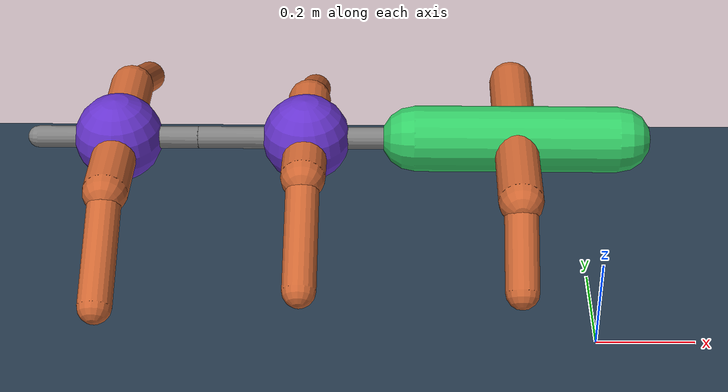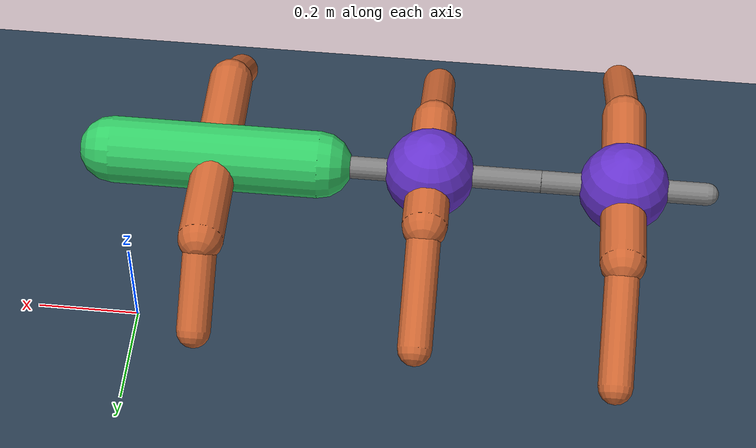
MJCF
<mujoco model="centipede">
  <compiler angle="degree" coordinate="local" inertiafromgeom="true"/>
  <option integrator="RK4" timestep="0.01"/>
  <default>
    <joint armature="0.1" damping="1" limited="true"/>
    <geom conaffinity="1" condim="3" density="5.0" friction="1 0.5 0.5" margin="0.01"/>
  </default>
  <asset>
    <texture builtin="checker" height="512" name="texplane" rgb1=".2 .3 .4" rgb2=".1 0.15 0.2" type="2d" width="512"/>
    <material name="MatPlane" reflectance="0.5" texrepeat="60 60" texture="texplane"/>
  </asset>
  <worldbody>
    <light cutoff="100" diffuse="1 1 1" dir="-0 0 -1.3" directional="true" pos="0 0 1.3"/>
    <geom material="MatPlane" name="floor" pos="0 0 0" size="40 40 40" type="plane"/>
    <body name="seg_0" pos="0 0 0.5">
      <freejoint name="root"/>
      <geom name="geom_seg_0" type="capsule" fromto="0 0 0 -0.371 0 0" size="0.06" rgba="0.2 0.8 0.4 1"/>

              <body name="leg_0_L" pos="-0.186 0 0" euler="0 0 90">
                <joint name="hip_0_L" type="hinge" axis="0 0 1" range="-40 40"/>
                <geom name="thigh_geom_0_L" type="capsule" fromto="0 0 0 0.188 0 0" size="0.04" rgba="0.8 0.4 0.2 1"/>
                <body name="ankle_0_L" pos="0.188 0 0">
                  <joint name="knee_0_L" type="hinge" axis="0 1 0" range="10 70"/>
                  <geom name="calf_geom_0_L" type="capsule" fromto="0 0 0 0.124 0 -0.1" size="0.03" rgba="0.8 0.4 0.2 1"/>
                </body>
              </body>

              <body name="leg_0_R" pos="-0.186 0 0" euler="0 0 -90">
                <joint name="hip_0_R" type="hinge" axis="0 0 1" range="-40 40"/>
                <geom name="thigh_geom_0_R" type="capsule" fromto="0 0 0 0.188 0 0" size="0.04" rgba="0.8 0.4 0.2 1"/>
                <body name="ankle_0_R" pos="0.188 0 0">
                  <joint name="knee_0_R" type="hinge" axis="0 1 0" range="10 70"/>
                  <geom name="calf_geom_0_R" type="capsule" fromto="0 0 0 0.124 0 -0.1" size="0.03" rgba="0.8 0.4 0.2 1"/>
                </body>
              </body>
                  <body name="seg_1" pos="-0.37116939129724535 0 0">
        <joint name="spine_yaw_1" type="hinge" axis="0 0 1" range="-40 40"/>
        <joint name="spine_pitch_1" type="hinge" axis="0 1 0" range="-20 20"/>
      <geom name="spine_bone_1" type="capsule" fromto="0 0 0 -0.394 0 0" size="0.02" rgba="0.5 0.5 0.5 1"/>
      <geom name="geom_seg_1" type="sphere" pos="-0.197 0 0" size="0.08" rgba="0.4 0.2 0.8 1"/>

              <body name="leg_1_L" pos="-0.197 0 0" euler="0 0 90">
                <joint name="hip_1_L" type="hinge" axis="0 0 1" range="-40 40"/>
                <geom name="thigh_geom_1_L" type="capsule" fromto="0 0 0 0.123 0 0" size="0.04" rgba="0.8 0.4 0.2 1"/>
                <body name="ankle_1_L" pos="0.123 0 0">
                  <joint name="knee_1_L" type="hinge" axis="0 1 0" range="10 70"/>
                  <geom name="calf_geom_1_L" type="capsule" fromto="0 0 0 0.189 0 -0.1" size="0.03" rgba="0.8 0.4 0.2 1"/>
                </body>
              </body>

              <body name="leg_1_R" pos="-0.197 0 0" euler="0 0 -90">
                <joint name="hip_1_R" type="hinge" axis="0 0 1" range="-40 40"/>
                <geom name="thigh_geom_1_R" type="capsule" fromto="0 0 0 0.123 0 0" size="0.04" rgba="0.8 0.4 0.2 1"/>
                <body name="ankle_1_R" pos="0.123 0 0">
                  <joint name="knee_1_R" type="hinge" axis="0 1 0" range="10 70"/>
                  <geom name="calf_geom_1_R" type="capsule" fromto="0 0 0 0.189 0 -0.1" size="0.03" rgba="0.8 0.4 0.2 1"/>
                </body>
              </body>
                  <body name="seg_2" pos="-0.393533531589085 0 0">
        <joint name="spine_yaw_2" type="hinge" axis="0 0 1" range="-40 40"/>
        <joint name="spine_pitch_2" type="hinge" axis="0 1 0" range="-20 20"/>
      <geom name="spine_bone_2" type="capsule" fromto="0 0 0 -0.292 0 0" size="0.02" rgba="0.5 0.5 0.5 1"/>
      <geom name="geom_seg_2" type="sphere" pos="-0.146 0 0" size="0.08" rgba="0.4 0.2 0.8 1"/>

              <body name="leg_2_L" pos="-0.146 0 0" euler="0 0 90">
                <joint name="hip_2_L" type="hinge" axis="0 0 1" range="-40 40"/>
                <geom name="thigh_geom_2_L" type="capsule" fromto="0 0 0 0.169 0 0" size="0.04" rgba="0.8 0.4 0.2 1"/>
                <body name="ankle_2_L" pos="0.169 0 0">
                  <joint name="knee_2_L" type="hinge" axis="0 1 0" range="10 70"/>
                  <geom name="calf_geom_2_L" type="capsule" fromto="0 0 0 0.187 0 -0.1" size="0.03" rgba="0.8 0.4 0.2 1"/>
                </body>
              </body>

              <body name="leg_2_R" pos="-0.146 0 0" euler="0 0 -90">
                <joint name="hip_2_R" type="hinge" axis="0 0 1" range="-40 40"/>
                <geom name="thigh_geom_2_R" type="capsule" fromto="0 0 0 0.169 0 0" size="0.04" rgba="0.8 0.4 0.2 1"/>
                <body name="ankle_2_R" pos="0.169 0 0">
                  <joint name="knee_2_R" type="hinge" axis="0 1 0" range="10 70"/>
                  <geom name="calf_geom_2_R" type="capsule" fromto="0 0 0 0.187 0 -0.1" size="0.03" rgba="0.8 0.4 0.2 1"/>
                </body>
              </body>
                </body>
    </body>
    </body>
  </worldbody>
  <actuator>
    <motor joint="hip_0_L" ctrlrange="-1.0 1.0" gear="30"/>
    <motor joint="knee_0_L" ctrlrange="-1.0 1.0" gear="30"/>
    <motor joint="hip_0_R" ctrlrange="-1.0 1.0" gear="30"/>
    <motor joint="knee_0_R" ctrlrange="-1.0 1.0" gear="30"/>
    <motor joint="spine_yaw_1" ctrlrange="-1.0 1.0" gear="30"/>
    <motor joint="spine_pitch_1" ctrlrange="-1.0 1.0" gear="30"/>
    <motor joint="hip_1_L" ctrlrange="-1.0 1.0" gear="30"/>
    <motor joint="knee_1_L" ctrlrange="-1.0 1.0" gear="30"/>
    <motor joint="hip_1_R" ctrlrange="-1.0 1.0" gear="30"/>
    <motor joint="knee_1_R" ctrlrange="-1.0 1.0" gear="30"/>
    <motor joint="spine_yaw_2" ctrlrange="-1.0 1.0" gear="30"/>
    <motor joint="spine_pitch_2" ctrlrange="-1.0 1.0" gear="30"/>
    <motor joint="hip_2_L" ctrlrange="-1.0 1.0" gear="30"/>
    <motor joint="knee_2_L" ctrlrange="-1.0 1.0" gear="30"/>
    <motor joint="hip_2_R" ctrlrange="-1.0 1.0" gear="30"/>
    <motor joint="knee_2_R" ctrlrange="-1.0 1.0" gear="30"/>
  </actuator>
</mujoco>
